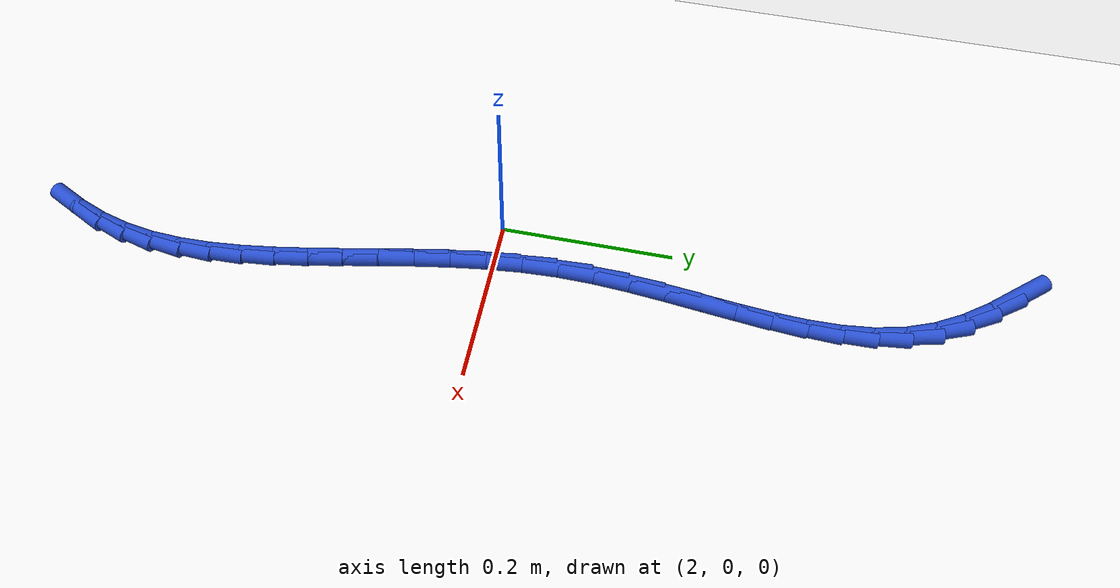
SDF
<sdf version="1.6">
 <world name="default">
  <model name="ground_plane">
   <static>1</static>
   <link name="link">
    <collision name="collision">
     <geometry><plane><normal>0 0 1</normal><size>100 100</size></plane></geometry>
     <surface><friction><ode><mu>100</mu><mu2>50</mu2></ode></friction></surface>
    </collision>
    <visual name="visual">
     <cast_shadows>0</cast_shadows>
     <geometry><plane><normal>0 0 1</normal><size>100 100</size></plane></geometry>
     <material>
      <script><uri>file://media/materials/scripts/gazebo.material</uri><name>Gazebo/WhiteGlow</name></script>
     </material>
    </visual>
   </link>
  </model>
  <model name="line">
   <link name="link_75">
    <pose>1.9815724845013825 0.5873539389336081 0.01 0 1.57 -0.8534943350205889</pose>
    <collision name="collision">
     <geometry><cylinder><radius>0.01</radius><length>0.08</length></cylinder></geometry>
    </collision>
    <visual name="visual">
     <material>
      <script><name>Gazebo/Blue</name><uri>file://media/materials/scripts/gazebo.material</uri></script>
     </material>
     <geometry><cylinder><radius>0.01</radius><length>0.08</length></cylinder></geometry>
    </visual>
   </link>
   <link name="link_76">
    <pose>2.006311223305744 0.5589937683156282 0.01 0 1.57 -0.9376273698811342</pose>
    <collision name="collision">
     <geometry><cylinder><radius>0.01</radius><length>0.08</length></cylinder></geometry>
    </collision>
    <visual name="visual">
     <material>
      <script><name>Gazebo/Blue</name><uri>file://media/materials/scripts/gazebo.material</uri></script>
     </material>
     <geometry><cylinder><radius>0.01</radius><length>0.08</length></cylinder></geometry>
    </visual>
   </link>
   <link name="link_77">
    <pose>2.0278487169770067 0.5296503178109643 0.01 0 1.57 -1.051935918147641</pose>
    <collision name="collision">
     <geometry><cylinder><radius>0.01</radius><length>0.08</length></cylinder></geometry>
    </collision>
    <visual name="visual">
     <material>
      <script><name>Gazebo/Blue</name><uri>file://media/materials/scripts/gazebo.material</uri></script>
     </material>
     <geometry><cylinder><radius>0.01</radius><length>0.08</length></cylinder></geometry>
    </visual>
   </link>
   <link name="link_78">
    <pose>2.0453867882105565 0.49893832689795137 0.01 0 1.57 -1.195794470808854</pose>
    <collision name="collision">
     <geometry><cylinder><radius>0.01</radius><length>0.08</length></cylinder></geometry>
    </collision>
    <visual name="visual">
     <material>
      <script><name>Gazebo/Blue</name><uri>file://media/materials/scripts/gazebo.material</uri></script>
     </material>
     <geometry><cylinder><radius>0.01</radius><length>0.08</length></cylinder></geometry>
    </visual>
   </link>
   <link name="link_79">
    <pose>2.058161216128191 0.46648533938625286 0.01 0 1.57 -1.3414431909576858</pose>
    <collision name="collision">
     <geometry><cylinder><radius>0.01</radius><length>0.08</length></cylinder></geometry>
    </collision>
    <visual name="visual">
     <material>
      <script><name>Gazebo/Blue</name><uri>file://media/materials/scripts/gazebo.material</uri></script>
     </material>
     <geometry><cylinder><radius>0.01</radius><length>0.08</length></cylinder></geometry>
    </visual>
   </link>
   <link name="link_80">
    <pose>2.06616451807535 0.43220425087218556 0.01 0 1.57 -1.460757004189676</pose>
    <collision name="collision">
     <geometry><cylinder><radius>0.01</radius><length>0.08</length></cylinder></geometry>
    </collision>
    <visual name="visual">
     <material>
      <script><name>Gazebo/Blue</name><uri>file://media/materials/scripts/gazebo.material</uri></script>
     </material>
     <geometry><cylinder><radius>0.01</radius><length>0.08</length></cylinder></geometry>
    </visual>
   </link>
   <link name="link_81">
    <pose>2.0701327125190447 0.39628831727587727 0.01 0 1.57 -1.5520436528779735</pose>
    <collision name="collision">
     <geometry><cylinder><radius>0.01</radius><length>0.08</length></cylinder></geometry>
    </collision>
    <visual name="visual">
     <material>
      <script><name>Gazebo/Blue</name><uri>file://media/materials/scripts/gazebo.material</uri></script>
     </material>
     <geometry><cylinder><radius>0.01</radius><length>0.08</length></cylinder></geometry>
    </visual>
   </link>
   <link name="link_82">
    <pose>2.070833126673831 0.35894260045875676 0.01 0 1.57 1.5241612899335717</pose>
    <collision name="collision">
     <geometry><cylinder><radius>0.01</radius><length>0.08</length></cylinder></geometry>
    </collision>
    <visual name="visual">
     <material>
      <script><name>Gazebo/Blue</name><uri>file://media/materials/scripts/gazebo.material</uri></script>
     </material>
     <geometry><cylinder><radius>0.01</radius><length>0.08</length></cylinder></geometry>
    </visual>
   </link>
   <link name="link_83">
    <pose>2.0690330877542618 0.3203721622822521 0.01 0 1.57 1.4817884769460845</pose>
    <collision name="collision">
     <geometry><cylinder><radius>0.01</radius><length>0.08</length></cylinder></geometry>
    </collision>
    <visual name="visual">
     <material>
      <script><name>Gazebo/Blue</name><uri>file://media/materials/scripts/gazebo.material</uri></script>
     </material>
     <geometry><cylinder><radius>0.01</radius><length>0.08</length></cylinder></geometry>
    </visual>
   </link>
   <link name="link_84">
    <pose>2.065499922974891 0.280782064607793 0.01 0 1.57 1.459905566141957</pose>
    <collision name="collision">
     <geometry><cylinder><radius>0.01</radius><length>0.08</length></cylinder></geometry>
    </collision>
    <visual name="visual">
     <material>
      <script><name>Gazebo/Blue</name><uri>file://media/materials/scripts/gazebo.material</uri></script>
     </material>
     <geometry><cylinder><radius>0.01</radius><length>0.08</length></cylinder></geometry>
    </visual>
   </link>
   <link name="link_85">
    <pose>2.0610009595502725 0.2403773692968074 0.01 0 1.57 1.456761385908657</pose>
    <collision name="collision">
     <geometry><cylinder><radius>0.01</radius><length>0.08</length></cylinder></geometry>
    </collision>
    <visual name="visual">
     <material>
      <script><name>Gazebo/Blue</name><uri>file://media/materials/scripts/gazebo.material</uri></script>
     </material>
     <geometry><cylinder><radius>0.01</radius><length>0.08</length></cylinder></geometry>
    </visual>
   </link>
   <link name="link_86">
    <pose>2.0563035246949606 0.19936313821072468 0.01 0 1.57 1.4714454111309732</pose>
    <collision name="collision">
     <geometry><cylinder><radius>0.01</radius><length>0.08</length></cylinder></geometry>
    </collision>
    <visual name="visual">
     <material>
      <script><name>Gazebo/Blue</name><uri>file://media/materials/scripts/gazebo.material</uri></script>
     </material>
     <geometry><cylinder><radius>0.01</radius><length>0.08</length></cylinder></geometry>
    </visual>
   </link>
   <link name="link_87">
    <pose>2.052174945623509 0.1579444332109735 0.01 0 1.57 1.5038010551601948</pose>
    <collision name="collision">
     <geometry><cylinder><radius>0.01</radius><length>0.08</length></cylinder></geometry>
    </collision>
    <visual name="visual">
     <material>
      <script><name>Gazebo/Blue</name><uri>file://media/materials/scripts/gazebo.material</uri></script>
     </material>
     <geometry><cylinder><radius>0.01</radius><length>0.08</length></cylinder></geometry>
    </visual>
   </link>
   <link name="link_88">
    <pose>2.0493825495504723 0.11632631615898201 0.01 0 1.57 1.5542368366929666</pose>
    <collision name="collision">
     <geometry><cylinder><radius>0.01</radius><length>0.08</length></cylinder></geometry>
    </collision>
    <visual name="visual">
     <material>
      <script><name>Gazebo/Blue</name><uri>file://media/materials/scripts/gazebo.material</uri></script>
     </material>
     <geometry><cylinder><radius>0.01</radius><length>0.08</length></cylinder></geometry>
    </visual>
   </link>
   <link name="link_89">
    <pose>2.0486934048240872 0.07471381907575049 0.01 0 1.57 -1.5251454232771917</pose>
    <collision name="collision">
     <geometry><cylinder><radius>0.01</radius><length>0.08</length></cylinder></geometry>
    </collision>
    <visual name="visual">
     <material>
      <script><name>Gazebo/Blue</name><uri>file://media/materials/scripts/gazebo.material</uri></script>
     </material>
     <geometry><cylinder><radius>0.01</radius><length>0.08</length></cylinder></geometry>
    </visual>
   </link>
   <link name="link_90">
    <pose>2.0505862687459873 0.03327873935550505 0.01 0 1.57 -1.471244832491079</pose>
    <collision name="collision">
     <geometry><cylinder><radius>0.01</radius><length>0.08</length></cylinder></geometry>
    </collision>
    <visual name="visual">
     <material>
      <script><name>Gazebo/Blue</name><uri>file://media/materials/scripts/gazebo.material</uri></script>
     </material>
     <geometry><cylinder><radius>0.01</radius><length>0.08</length></cylinder></geometry>
    </visual>
   </link>
   <link name="link_91">
    <pose>2.0546996677932206 -0.007903981965225492 0.01 0 1.57 -1.4293492128165735</pose>
    <collision name="collision">
     <geometry><cylinder><radius>0.01</radius><length>0.08</length></cylinder></geometry>
    </collision>
    <visual name="visual">
     <material>
      <script><name>Gazebo/Blue</name><uri>file://media/materials/scripts/gazebo.material</uri></script>
     </material>
     <geometry><cylinder><radius>0.01</radius><length>0.08</length></cylinder></geometry>
    </visual>
   </link>
   <link name="link_92">
    <pose>2.060519898975366 -0.04877695187519639 0.01 0 1.57 -1.3993516034323685</pose>
    <collision name="collision">
     <geometry><cylinder><radius>0.01</radius><length>0.08</length></cylinder></geometry>
    </collision>
    <visual name="visual">
     <material>
      <script><name>Gazebo/Blue</name><uri>file://media/materials/scripts/gazebo.material</uri></script>
     </material>
     <geometry><cylinder><radius>0.01</radius><length>0.08</length></cylinder></geometry>
    </visual>
   </link>
   <link name="link_93">
    <pose>2.067533259301999 -0.0892827773631605 0.01 0 1.57 -1.3811726511195546</pose>
    <collision name="collision">
     <geometry><cylinder><radius>0.01</radius><length>0.08</length></cylinder></geometry>
    </collision>
    <visual name="visual">
     <material>
      <script><name>Gazebo/Blue</name><uri>file://media/materials/scripts/gazebo.material</uri></script>
     </material>
     <geometry><cylinder><radius>0.01</radius><length>0.08</length></cylinder></geometry>
    </visual>
   </link>
   <link name="link_94">
    <pose>2.0752260457826988 -0.12936406541787301 0.01 0 1.57 -1.3748911787282283</pose>
    <collision name="collision">
     <geometry><cylinder><radius>0.01</radius><length>0.08</length></cylinder></geometry>
    </collision>
    <visual name="visual">
     <material>
      <script><name>Gazebo/Blue</name><uri>file://media/materials/scripts/gazebo.material</uri></script>
     </material>
     <geometry><cylinder><radius>0.01</radius><length>0.08</length></cylinder></geometry>
    </visual>
   </link>
   <link name="link_95">
    <pose>2.0830845554270425 -0.1689634230280885 0.01 0 1.57 -1.380833103140129</pose>
    <collision name="collision">
     <geometry><cylinder><radius>0.01</radius><length>0.08</length></cylinder></geometry>
    </collision>
    <visual name="visual">
     <material>
      <script><name>Gazebo/Blue</name><uri>file://media/materials/scripts/gazebo.material</uri></script>
     </material>
     <geometry><cylinder><radius>0.01</radius><length>0.08</length></cylinder></geometry>
    </visual>
   </link>
   <link name="link_96">
    <pose>2.090595085244608 -0.20802345718256135 0.01 0 1.57 -1.3996258554155856</pose>
    <collision name="collision">
     <geometry><cylinder><radius>0.01</radius><length>0.08</length></cylinder></geometry>
    </collision>
    <visual name="visual">
     <material>
      <script><name>Gazebo/Blue</name><uri>file://media/materials/scripts/gazebo.material</uri></script>
     </material>
     <geometry><cylinder><radius>0.01</radius><length>0.08</length></cylinder></geometry>
    </visual>
   </link>
   <link name="link_97">
    <pose>2.0972439322449707 -0.24648677487004592 0.01 0 1.57 -1.4322147626011565</pose>
    <collision name="collision">
     <geometry><cylinder><radius>0.01</radius><length>0.08</length></cylinder></geometry>
    </collision>
    <visual name="visual">
     <material>
      <script><name>Gazebo/Blue</name><uri>file://media/materials/scripts/gazebo.material</uri></script>
     </material>
     <geometry><cylinder><radius>0.01</radius><length>0.08</length></cylinder></geometry>
    </visual>
   </link>
   <link name="link_98">
    <pose>2.102517393437711 -0.28429598307929754 0.01 0 1.57 -1.4798195414958955</pose>
    <collision name="collision">
     <geometry><cylinder><radius>0.01</radius><length>0.08</length></cylinder></geometry>
    </collision>
    <visual name="visual">
     <material>
      <script><name>Gazebo/Blue</name><uri>file://media/materials/scripts/gazebo.material</uri></script>
     </material>
     <geometry><cylinder><radius>0.01</radius><length>0.08</length></cylinder></geometry>
    </visual>
   </link>
   <link name="link_99">
    <pose>2.1059017658324044 -0.32139368879906915 0.01 0 1.57 -1.5437835554186492</pose>
    <collision name="collision">
     <geometry><cylinder><radius>0.01</radius><length>0.08</length></cylinder></geometry>
    </collision>
    <visual name="visual">
     <material>
      <script><name>Gazebo/Blue</name><uri>file://media/materials/scripts/gazebo.material</uri></script>
     </material>
     <geometry><cylinder><radius>0.01</radius><length>0.08</length></cylinder></geometry>
    </visual>
   </link>
   <link name="link_100">
    <pose>2.1068833464386287 -0.3577224990181158 0.01 0 1.57 1.5163494394310988</pose>
    <collision name="collision">
     <geometry><cylinder><radius>0.01</radius><length>0.08</length></cylinder></geometry>
    </collision>
    <visual name="visual">
     <material>
      <script><name>Gazebo/Blue</name><uri>file://media/materials/scripts/gazebo.material</uri></script>
     </material>
     <geometry><cylinder><radius>0.01</radius><length>0.08</length></cylinder></geometry>
    </visual>
   </link>
   <link name="link_101">
    <pose>2.104948432265962 -0.39322502072519216 0.01 0 1.57 1.417042827145203</pose>
    <collision name="collision">
     <geometry><cylinder><radius>0.01</radius><length>0.08</length></cylinder></geometry>
    </collision>
    <visual name="visual">
     <material>
      <script><name>Gazebo/Blue</name><uri>file://media/materials/scripts/gazebo.material</uri></script>
     </material>
     <geometry><cylinder><radius>0.01</radius><length>0.08</length></cylinder></geometry>
    </visual>
   </link>
   <link name="link_102">
    <pose>2.0995833203239807 -0.4278438609090526 0.01 0 1.57 1.3046225756485497</pose>
    <collision name="collision">
     <geometry><cylinder><radius>0.01</radius><length>0.08</length></cylinder></geometry>
    </collision>
    <visual name="visual">
     <material>
      <script><name>Gazebo/Blue</name><uri>file://media/materials/scripts/gazebo.material</uri></script>
     </material>
     <geometry><cylinder><radius>0.01</radius><length>0.08</length></cylinder></geometry>
    </visual>
   </link>
   <link name="link_103">
    <pose>2.0903950252621324 -0.46154467081697065 0.01 0 1.57 1.1987971139912161</pose>
    <collision name="collision">
     <geometry><cylinder><radius>0.01</radius><length>0.08</length></cylinder></geometry>
    </collision>
    <visual name="visual">
     <material>
      <script><name>Gazebo/Blue</name><uri>file://media/materials/scripts/gazebo.material</uri></script>
     </material>
     <geometry><cylinder><radius>0.01</radius><length>0.08</length></cylinder></geometry>
    </visual>
   </link>
   <link name="link_104">
    <pose>2.0775742622882056 -0.49440452655987804 0.01 0 1.57 1.1066128775923414</pose>
    <collision name="collision">
     <geometry><cylinder><radius>0.01</radius><length>0.08</length></cylinder></geometry>
    </collision>
    <visual name="visual">
     <material>
      <script><name>Gazebo/Blue</name><uri>file://media/materials/scripts/gazebo.material</uri></script>
     </material>
     <geometry><cylinder><radius>0.01</radius><length>0.08</length></cylinder></geometry>
    </visual>
   </link>
  </model>
 </world>
</sdf>
